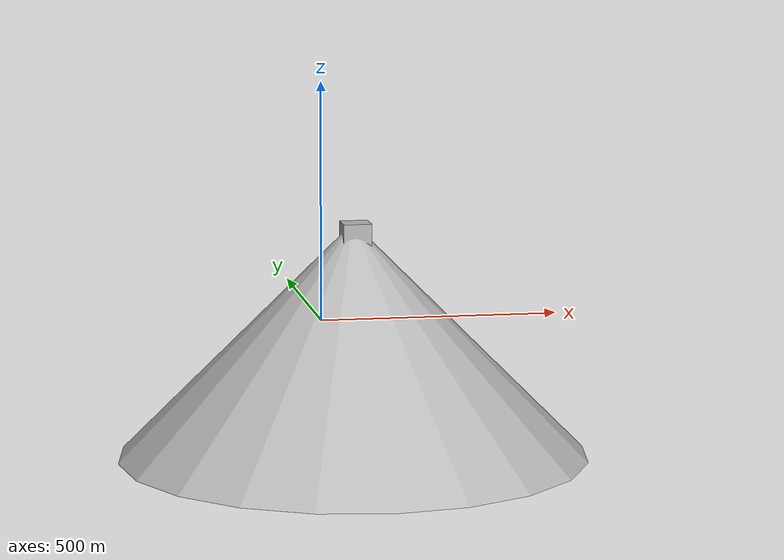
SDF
<?xml version="1.0" ?>
<sdf version="1.5">
  <model name="Bigcone">
    <link name="link">
      <collision name="collision">
        <geometry>
          <mesh>
            <uri>model://bigcone/meshes/bigcone.dae</uri>
          </mesh>
        </geometry>
        <surface>
          <friction>
            <ode>
              <mu>100</mu>
              <mu2>50</mu2>
            </ode>
          </friction>
        </surface>
      </collision>
      <visual name="visual">
        <geometry>
          <mesh>
            <uri>model://bigcone/meshes/bigcone.dae</uri>
          </mesh>
        </geometry>
      </visual>
    </link>
  </model>
</sdf>
